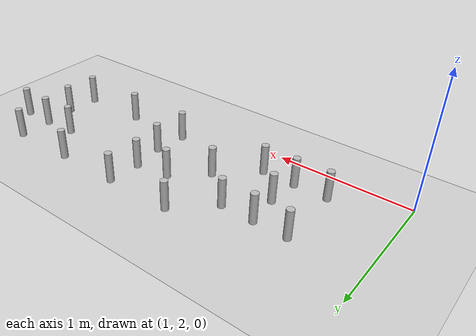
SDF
<sdf version="1.6">
 <world name="default">
  <model name="ground_plane">
   <static>1</static>
   <link name="link">
    <collision name="collision">
     <geometry><plane><normal>0 0 1</normal><size>100 100</size></plane></geometry>
     <surface><friction><ode><mu>100</mu><mu2>50</mu2></ode></friction></surface>
    </collision>
    <visual name="visual">
     <cast_shadows>0</cast_shadows>
     <geometry><plane><normal>0 0 1</normal><size>100 100</size></plane></geometry>
     <material>
      <script><uri>file://media/materials/scripts/gazebo.material</uri><name>Gazebo/Grey</name></script>
     </material>
    </visual>
   </link>
  </model>
  <model name="can4">
   <link name="link">
    <pose>0 0 0.115 0 -0 0</pose>
    <inertial>
     <mass>0.39</mass>
     <inertia><ixx>0.00058</ixx><ixy>0</ixy><ixz>0</ixz><iyy>0.00058</iyy><iyz>0</iyz><izz>0.00019</izz></inertia>
    </inertial>
    <collision name="collision">
     <geometry><cylinder><radius>0.0275</radius><length>0.23</length></cylinder></geometry>
    </collision>
    <visual name="visual">
     <geometry><cylinder><radius>0.0275</radius><length>0.23</length></cylinder></geometry>
     <material>
      <script>
       <uri>model://beer/materials/scripts</uri>
       <uri>model://beer/materials/textures</uri>
       <name>Beer/Diffuse</name>
      </script>
     </material>
    </visual>
   </link>
   <pose>2.26718045114 3.0 -2e-06 1e-06 0 -9.5e-05</pose>
  </model>
  <model name="can9">
   <link name="link">
    <pose>0 0 0.115 0 -0 0</pose>
    <inertial>
     <mass>0.39</mass>
     <inertia><ixx>0.00058</ixx><ixy>0</ixy><ixz>0</ixz><iyy>0.00058</iyy><iyz>0</iyz><izz>0.00019</izz></inertia>
    </inertial>
    <collision name="collision">
     <geometry><cylinder><radius>0.0275</radius><length>0.23</length></cylinder></geometry>
    </collision>
    <visual name="visual">
     <geometry><cylinder><radius>0.0275</radius><length>0.23</length></cylinder></geometry>
     <material>
      <script>
       <uri>model://beer/materials/scripts</uri>
       <uri>model://beer/materials/textures</uri>
       <name>Beer/Diffuse</name>
      </script>
     </material>
    </visual>
   </link>
   <pose>2.75 2.25 -2e-06 1e-06 0 -9.5e-05</pose>
  </model>
  <model name="can10">
   <link name="link">
    <pose>0 0 0.115 0 -0 0</pose>
    <inertial>
     <mass>0.39</mass>
     <inertia><ixx>0.00058</ixx><ixy>0</ixy><ixz>0</ixz><iyy>0.00058</iyy><iyz>0</iyz><izz>0.00019</izz></inertia>
    </inertial>
    <collision name="collision">
     <geometry><cylinder><radius>0.0275</radius><length>0.23</length></cylinder></geometry>
    </collision>
    <visual name="visual">
     <geometry><cylinder><radius>0.0275</radius><length>0.23</length></cylinder></geometry>
     <material>
      <script>
       <uri>model://beer/materials/scripts</uri>
       <uri>model://beer/materials/textures</uri>
       <name>Beer/Diffuse</name>
      </script>
     </material>
    </visual>
   </link>
   <pose>2.0 2.74515271717 -2e-06 1e-06 0 -9.5e-05</pose>
  </model>
  <model name="can15">
   <link name="link">
    <pose>0 0 0.115 0 -0 0</pose>
    <inertial>
     <mass>0.39</mass>
     <inertia><ixx>0.00058</ixx><ixy>0</ixy><ixz>0</ixz><iyy>0.00058</iyy><iyz>0</iyz><izz>0.00019</izz></inertia>
    </inertial>
    <collision name="collision">
     <geometry><cylinder><radius>0.0275</radius><length>0.23</length></cylinder></geometry>
    </collision>
    <visual name="visual">
     <geometry><cylinder><radius>0.0275</radius><length>0.23</length></cylinder></geometry>
     <material>
      <script>
       <uri>model://beer/materials/scripts</uri>
       <uri>model://beer/materials/textures</uri>
       <name>Beer/Diffuse</name>
      </script>
     </material>
    </visual>
   </link>
   <pose>3.25 2.25 -2e-06 1e-06 0 -9.5e-05</pose>
  </model>
  <model name="can22">
   <link name="link">
    <pose>0 0 0.115 0 -0 0</pose>
    <inertial>
     <mass>0.39</mass>
     <inertia><ixx>0.00058</ixx><ixy>0</ixy><ixz>0</ixz><iyy>0.00058</iyy><iyz>0</iyz><izz>0.00019</izz></inertia>
    </inertial>
    <collision name="collision">
     <geometry><cylinder><radius>0.0275</radius><length>0.23</length></cylinder></geometry>
    </collision>
    <visual name="visual">
     <geometry><cylinder><radius>0.0275</radius><length>0.23</length></cylinder></geometry>
     <material>
      <script>
       <uri>model://beer/materials/scripts</uri>
       <uri>model://beer/materials/textures</uri>
       <name>Beer/Diffuse</name>
      </script>
     </material>
    </visual>
   </link>
   <pose>3.77302308352 2.5 -2e-06 1e-06 0 -9.5e-05</pose>
  </model>
  <model name="can29">
   <link name="link">
    <pose>0 0 0.115 0 -0 0</pose>
    <inertial>
     <mass>0.39</mass>
     <inertia><ixx>0.00058</ixx><ixy>0</ixy><ixz>0</ixz><iyy>0.00058</iyy><iyz>0</iyz><izz>0.00019</izz></inertia>
    </inertial>
    <collision name="collision">
     <geometry><cylinder><radius>0.0275</radius><length>0.23</length></cylinder></geometry>
    </collision>
    <visual name="visual">
     <geometry><cylinder><radius>0.0275</radius><length>0.23</length></cylinder></geometry>
     <material>
      <script>
       <uri>model://beer/materials/scripts</uri>
       <uri>model://beer/materials/textures</uri>
       <name>Beer/Diffuse</name>
      </script>
     </material>
    </visual>
   </link>
   <pose>3.5 2.73313233826 -2e-06 1e-06 0 -9.5e-05</pose>
  </model>
  <model name="can30">
   <link name="link">
    <pose>0 0 0.115 0 -0 0</pose>
    <inertial>
     <mass>0.39</mass>
     <inertia><ixx>0.00058</ixx><ixy>0</ixy><ixz>0</ixz><iyy>0.00058</iyy><iyz>0</iyz><izz>0.00019</izz></inertia>
    </inertial>
    <collision name="collision">
     <geometry><cylinder><radius>0.0275</radius><length>0.23</length></cylinder></geometry>
    </collision>
    <visual name="visual">
     <geometry><cylinder><radius>0.0275</radius><length>0.23</length></cylinder></geometry>
     <material>
      <script>
       <uri>model://beer/materials/scripts</uri>
       <uri>model://beer/materials/textures</uri>
       <name>Beer/Diffuse</name>
      </script>
     </material>
    </visual>
   </link>
   <pose>2.26679566876 2.5 -2e-06 1e-06 0 -9.5e-05</pose>
  </model>
  <model name="can32">
   <link name="link">
    <pose>0 0 0.115 0 -0 0</pose>
    <inertial>
     <mass>0.39</mass>
     <inertia><ixx>0.00058</ixx><ixy>0</ixy><ixz>0</ixz><iyy>0.00058</iyy><iyz>0</iyz><izz>0.00019</izz></inertia>
    </inertial>
    <collision name="collision">
     <geometry><cylinder><radius>0.0275</radius><length>0.23</length></cylinder></geometry>
    </collision>
    <visual name="visual">
     <geometry><cylinder><radius>0.0275</radius><length>0.23</length></cylinder></geometry>
     <material>
      <script>
       <uri>model://beer/materials/scripts</uri>
       <uri>model://beer/materials/textures</uri>
       <name>Beer/Diffuse</name>
      </script>
     </material>
    </visual>
   </link>
   <pose>1.75 2.25 -2e-06 1e-06 0 -9.5e-05</pose>
  </model>
  <model name="can46">
   <link name="link">
    <pose>0 0 0.115 0 -0 0</pose>
    <inertial>
     <mass>0.39</mass>
     <inertia><ixx>0.00058</ixx><ixy>0</ixy><ixz>0</ixz><iyy>0.00058</iyy><iyz>0</iyz><izz>0.00019</izz></inertia>
    </inertial>
    <collision name="collision">
     <geometry><cylinder><radius>0.0275</radius><length>0.23</length></cylinder></geometry>
    </collision>
    <visual name="visual">
     <geometry><cylinder><radius>0.0275</radius><length>0.23</length></cylinder></geometry>
     <material>
      <script>
       <uri>model://beer/materials/scripts</uri>
       <uri>model://beer/materials/textures</uri>
       <name>Beer/Diffuse</name>
      </script>
     </material>
    </visual>
   </link>
   <pose>4.0 2.74399311653 -2e-06 1e-06 0 -9.5e-05</pose>
  </model>
  <model name="can51">
   <link name="link">
    <pose>0 0 0.115 0 -0 0</pose>
    <inertial>
     <mass>0.39</mass>
     <inertia><ixx>0.00058</ixx><ixy>0</ixy><ixz>0</ixz><iyy>0.00058</iyy><iyz>0</iyz><izz>0.00019</izz></inertia>
    </inertial>
    <collision name="collision">
     <geometry><cylinder><radius>0.0275</radius><length>0.23</length></cylinder></geometry>
    </collision>
    <visual name="visual">
     <geometry><cylinder><radius>0.0275</radius><length>0.23</length></cylinder></geometry>
     <material>
      <script>
       <uri>model://beer/materials/scripts</uri>
       <uri>model://beer/materials/textures</uri>
       <name>Beer/Diffuse</name>
      </script>
     </material>
    </visual>
   </link>
   <pose>1.75 2.75 -2e-06 1e-06 0 -9.5e-05</pose>
  </model>
  <model name="can53">
   <link name="link">
    <pose>0 0 0.115 0 -0 0</pose>
    <inertial>
     <mass>0.39</mass>
     <inertia><ixx>0.00058</ixx><ixy>0</ixy><ixz>0</ixz><iyy>0.00058</iyy><iyz>0</iyz><izz>0.00019</izz></inertia>
    </inertial>
    <collision name="collision">
     <geometry><cylinder><radius>0.0275</radius><length>0.23</length></cylinder></geometry>
    </collision>
    <visual name="visual">
     <geometry><cylinder><radius>0.0275</radius><length>0.23</length></cylinder></geometry>
     <material>
      <script>
       <uri>model://beer/materials/scripts</uri>
       <uri>model://beer/materials/textures</uri>
       <name>Beer/Diffuse</name>
      </script>
     </material>
    </visual>
   </link>
   <pose>2.75 2.75 -2e-06 1e-06 0 -9.5e-05</pose>
  </model>
  <model name="can64">
   <link name="link">
    <pose>0 0 0.115 0 -0 0</pose>
    <inertial>
     <mass>0.39</mass>
     <inertia><ixx>0.00058</ixx><ixy>0</ixy><ixz>0</ixz><iyy>0.00058</iyy><iyz>0</iyz><izz>0.00019</izz></inertia>
    </inertial>
    <collision name="collision">
     <geometry><cylinder><radius>0.0275</radius><length>0.23</length></cylinder></geometry>
    </collision>
    <visual name="visual">
     <geometry><cylinder><radius>0.0275</radius><length>0.23</length></cylinder></geometry>
     <material>
      <script>
       <uri>model://beer/materials/scripts</uri>
       <uri>model://beer/materials/textures</uri>
       <name>Beer/Diffuse</name>
      </script>
     </material>
    </visual>
   </link>
   <pose>1.5 2.2461066047 -2e-06 1e-06 0 -9.5e-05</pose>
  </model>
  <model name="can73">
   <link name="link">
    <pose>0 0 0.115 0 -0 0</pose>
    <inertial>
     <mass>0.39</mass>
     <inertia><ixx>0.00058</ixx><ixy>0</ixy><ixz>0</ixz><iyy>0.00058</iyy><iyz>0</iyz><izz>0.00019</izz></inertia>
    </inertial>
    <collision name="collision">
     <geometry><cylinder><radius>0.0275</radius><length>0.23</length></cylinder></geometry>
    </collision>
    <visual name="visual">
     <geometry><cylinder><radius>0.0275</radius><length>0.23</length></cylinder></geometry>
     <material>
      <script>
       <uri>model://beer/materials/scripts</uri>
       <uri>model://beer/materials/textures</uri>
       <name>Beer/Diffuse</name>
      </script>
     </material>
    </visual>
   </link>
   <pose>1.77156948028 2.5 -2e-06 1e-06 0 -9.5e-05</pose>
  </model>
  <model name="can80">
   <link name="link">
    <pose>0 0 0.115 0 -0 0</pose>
    <inertial>
     <mass>0.39</mass>
     <inertia><ixx>0.00058</ixx><ixy>0</ixy><ixz>0</ixz><iyy>0.00058</iyy><iyz>0</iyz><izz>0.00019</izz></inertia>
    </inertial>
    <collision name="collision">
     <geometry><cylinder><radius>0.0275</radius><length>0.23</length></cylinder></geometry>
    </collision>
    <visual name="visual">
     <geometry><cylinder><radius>0.0275</radius><length>0.23</length></cylinder></geometry>
     <material>
      <script>
       <uri>model://beer/materials/scripts</uri>
       <uri>model://beer/materials/textures</uri>
       <name>Beer/Diffuse</name>
      </script>
     </material>
    </visual>
   </link>
   <pose>3.75 2.75 -2e-06 1e-06 0 -9.5e-05</pose>
  </model>
  <model name="can81">
   <link name="link">
    <pose>0 0 0.115 0 -0 0</pose>
    <inertial>
     <mass>0.39</mass>
     <inertia><ixx>0.00058</ixx><ixy>0</ixy><ixz>0</ixz><iyy>0.00058</iyy><iyz>0</iyz><izz>0.00019</izz></inertia>
    </inertial>
    <collision name="collision">
     <geometry><cylinder><radius>0.0275</radius><length>0.23</length></cylinder></geometry>
    </collision>
    <visual name="visual">
     <geometry><cylinder><radius>0.0275</radius><length>0.23</length></cylinder></geometry>
     <material>
      <script>
       <uri>model://beer/materials/scripts</uri>
       <uri>model://beer/materials/textures</uri>
       <name>Beer/Diffuse</name>
      </script>
     </material>
    </visual>
   </link>
   <pose>2.7803435082 2.5 -2e-06 1e-06 0 -9.5e-05</pose>
  </model>
  <model name="can86">
   <link name="link">
    <pose>0 0 0.115 0 -0 0</pose>
    <inertial>
     <mass>0.39</mass>
     <inertia><ixx>0.00058</ixx><ixy>0</ixy><ixz>0</ixz><iyy>0.00058</iyy><iyz>0</iyz><izz>0.00019</izz></inertia>
    </inertial>
    <collision name="collision">
     <geometry><cylinder><radius>0.0275</radius><length>0.23</length></cylinder></geometry>
    </collision>
    <visual name="visual">
     <geometry><cylinder><radius>0.0275</radius><length>0.23</length></cylinder></geometry>
     <material>
      <script>
       <uri>model://beer/materials/scripts</uri>
       <uri>model://beer/materials/textures</uri>
       <name>Beer/Diffuse</name>
      </script>
     </material>
    </visual>
   </link>
   <pose>2.0 2.24780661329 -2e-06 1e-06 0 -9.5e-05</pose>
  </model>
  <model name="can92">
   <link name="link">
    <pose>0 0 0.115 0 -0 0</pose>
    <inertial>
     <mass>0.39</mass>
     <inertia><ixx>0.00058</ixx><ixy>0</ixy><ixz>0</ixz><iyy>0.00058</iyy><iyz>0</iyz><izz>0.00019</izz></inertia>
    </inertial>
    <collision name="collision">
     <geometry><cylinder><radius>0.0275</radius><length>0.23</length></cylinder></geometry>
    </collision>
    <visual name="visual">
     <geometry><cylinder><radius>0.0275</radius><length>0.23</length></cylinder></geometry>
     <material>
      <script>
       <uri>model://beer/materials/scripts</uri>
       <uri>model://beer/materials/textures</uri>
       <name>Beer/Diffuse</name>
      </script>
     </material>
    </visual>
   </link>
   <pose>3.25756056099 3.0 -2e-06 1e-06 0 -9.5e-05</pose>
  </model>
  <model name="can104">
   <link name="link">
    <pose>0 0 0.115 0 -0 0</pose>
    <inertial>
     <mass>0.39</mass>
     <inertia><ixx>0.00058</ixx><ixy>0</ixy><ixz>0</ixz><iyy>0.00058</iyy><iyz>0</iyz><izz>0.00019</izz></inertia>
    </inertial>
    <collision name="collision">
     <geometry><cylinder><radius>0.0275</radius><length>0.23</length></cylinder></geometry>
    </collision>
    <visual name="visual">
     <geometry><cylinder><radius>0.0275</radius><length>0.23</length></cylinder></geometry>
     <material>
      <script>
       <uri>model://beer/materials/scripts</uri>
       <uri>model://beer/materials/textures</uri>
       <name>Beer/Diffuse</name>
      </script>
     </material>
    </visual>
   </link>
   <pose>2.77093136832 3.0 -2e-06 1e-06 0 -9.5e-05</pose>
  </model>
  <model name="can106">
   <link name="link">
    <pose>0 0 0.115 0 -0 0</pose>
    <inertial>
     <mass>0.39</mass>
     <inertia><ixx>0.00058</ixx><ixy>0</ixy><ixz>0</ixz><iyy>0.00058</iyy><iyz>0</iyz><izz>0.00019</izz></inertia>
    </inertial>
    <collision name="collision">
     <geometry><cylinder><radius>0.0275</radius><length>0.23</length></cylinder></geometry>
    </collision>
    <visual name="visual">
     <geometry><cylinder><radius>0.0275</radius><length>0.23</length></cylinder></geometry>
     <material>
      <script>
       <uri>model://beer/materials/scripts</uri>
       <uri>model://beer/materials/textures</uri>
       <name>Beer/Diffuse</name>
      </script>
     </material>
    </visual>
   </link>
   <pose>1.5 2.74918024882 -2e-06 1e-06 0 -9.5e-05</pose>
  </model>
  <model name="can112">
   <link name="link">
    <pose>0 0 0.115 0 -0 0</pose>
    <inertial>
     <mass>0.39</mass>
     <inertia><ixx>0.00058</ixx><ixy>0</ixy><ixz>0</ixz><iyy>0.00058</iyy><iyz>0</iyz><izz>0.00019</izz></inertia>
    </inertial>
    <collision name="collision">
     <geometry><cylinder><radius>0.0275</radius><length>0.23</length></cylinder></geometry>
    </collision>
    <visual name="visual">
     <geometry><cylinder><radius>0.0275</radius><length>0.23</length></cylinder></geometry>
     <material>
      <script>
       <uri>model://beer/materials/scripts</uri>
       <uri>model://beer/materials/textures</uri>
       <name>Beer/Diffuse</name>
      </script>
     </material>
    </visual>
   </link>
   <pose>3.75582810838 3.0 -2e-06 1e-06 0 -9.5e-05</pose>
  </model>
  <model name="can126">
   <link name="link">
    <pose>0 0 0.115 0 -0 0</pose>
    <inertial>
     <mass>0.39</mass>
     <inertia><ixx>0.00058</ixx><ixy>0</ixy><ixz>0</ixz><iyy>0.00058</iyy><iyz>0</iyz><izz>0.00019</izz></inertia>
    </inertial>
    <collision name="collision">
     <geometry><cylinder><radius>0.0275</radius><length>0.23</length></cylinder></geometry>
    </collision>
    <visual name="visual">
     <geometry><cylinder><radius>0.0275</radius><length>0.23</length></cylinder></geometry>
     <material>
      <script>
       <uri>model://beer/materials/scripts</uri>
       <uri>model://beer/materials/textures</uri>
       <name>Beer/Diffuse</name>
      </script>
     </material>
    </visual>
   </link>
   <pose>3.75 2.25 -2e-06 1e-06 0 -9.5e-05</pose>
  </model>
  <model name="can127">
   <link name="link">
    <pose>0 0 0.115 0 -0 0</pose>
    <inertial>
     <mass>0.39</mass>
     <inertia><ixx>0.00058</ixx><ixy>0</ixy><ixz>0</ixz><iyy>0.00058</iyy><iyz>0</iyz><izz>0.00019</izz></inertia>
    </inertial>
    <collision name="collision">
     <geometry><cylinder><radius>0.0275</radius><length>0.23</length></cylinder></geometry>
    </collision>
    <visual name="visual">
     <geometry><cylinder><radius>0.0275</radius><length>0.23</length></cylinder></geometry>
     <material>
      <script>
       <uri>model://beer/materials/scripts</uri>
       <uri>model://beer/materials/textures</uri>
       <name>Beer/Diffuse</name>
      </script>
     </material>
    </visual>
   </link>
   <pose>2.5 2.71528905759 -2e-06 1e-06 0 -9.5e-05</pose>
  </model>
 </world>
</sdf>
